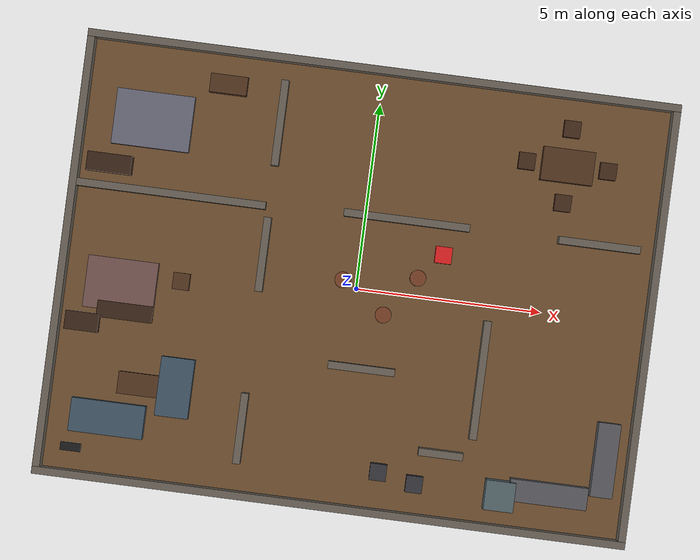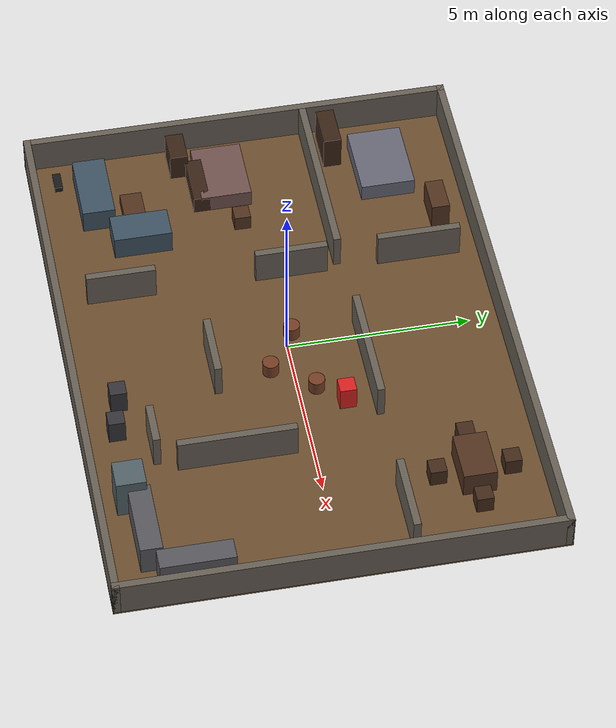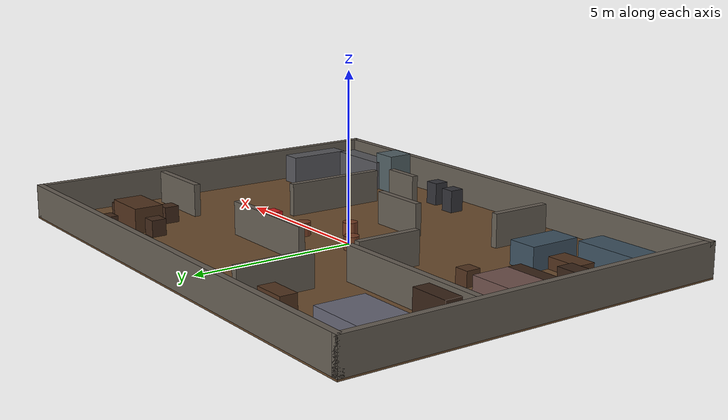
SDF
<?xml version="1.0" ?>
<sdf version="1.6">
  <world name="cleaning_house_v2_dark">

    <gravity>0 0 -9.8</gravity>

    <physics type="ode">
      <max_step_size>0.001</max_step_size>
      <real_time_update_rate>1000</real_time_update_rate>
    </physics>

    <scene>
      <ambient>0.72 0.72 0.72 1</ambient>
      <background>0.28 0.28 0.30 1</background>
      <shadows>false</shadows>
      <grid>true</grid>
    </scene>

    <light name="sun" type="directional">
      <cast_shadows>false</cast_shadows>
      <pose>0 0 10 0 0 0</pose>
      <diffuse>0.75 0.75 0.75 1</diffuse>
      <specular>0.15 0.15 0.15 1</specular>
      <attenuation>
        <range>100</range>
        <constant>0.9</constant>
        <linear>0.01</linear>
        <quadratic>0.001</quadratic>
      </attenuation>
      <direction>-0.3 0.15 -0.9</direction>
    </light>

    <!-- ================= 地面 ================= -->
    <model name="floor">
      <static>true</static>
      <link name="link">
        <collision name="collision">
          <geometry>
            <box>
              <size>16 12 0.05</size>
            </box>
          </geometry>
        </collision>
        <visual name="visual">
          <geometry>
            <box>
              <size>16 12 0.05</size>
            </box>
          </geometry>
          <material>
            <ambient>0.34 0.24 0.14 1</ambient>
            <diffuse>0.42 0.30 0.18 1</diffuse>
          </material>
        </visual>
        <pose>0 0 -0.025 0 0 0</pose>
      </link>
    </model>

    <!-- ================= 外墙 ================= -->
    <model name="wall_north">
      <static>true</static>
      <link name="link">
        <collision name="collision">
          <geometry>
            <box>
              <size>16 0.2 1.0</size>
            </box>
          </geometry>
        </collision>
        <visual name="visual">
          <geometry>
            <box>
              <size>16 0.2 1.0</size>
            </box>
          </geometry>
          <material>
            <ambient>0.30 0.28 0.25 1</ambient>
            <diffuse>0.40 0.37 0.33 1</diffuse>
          </material>
        </visual>
        <pose>0 5.9 0.5 0 0 0</pose>
      </link>
    </model>

    <model name="wall_south">
      <static>true</static>
      <link name="link">
        <collision name="collision">
          <geometry>
            <box>
              <size>16 0.2 1.0</size>
            </box>
          </geometry>
        </collision>
        <visual name="visual">
          <geometry>
            <box>
              <size>16 0.2 1.0</size>
            </box>
          </geometry>
          <material>
            <ambient>0.30 0.28 0.25 1</ambient>
            <diffuse>0.40 0.37 0.33 1</diffuse>
          </material>
        </visual>
        <pose>0 -5.9 0.5 0 0 0</pose>
      </link>
    </model>

    <model name="wall_west">
      <static>true</static>
      <link name="link">
        <collision name="collision">
          <geometry>
            <box>
              <size>0.2 12 1.0</size>
            </box>
          </geometry>
        </collision>
        <visual name="visual">
          <geometry>
            <box>
              <size>0.2 12 1.0</size>
            </box>
          </geometry>
          <material>
            <ambient>0.30 0.28 0.25 1</ambient>
            <diffuse>0.40 0.37 0.33 1</diffuse>
          </material>
        </visual>
        <pose>-7.9 0 0.5 0 0 0</pose>
      </link>
    </model>

    <model name="wall_east">
      <static>true</static>
      <link name="link">
        <collision name="collision">
          <geometry>
            <box>
              <size>0.2 12 1.0</size>
            </box>
          </geometry>
        </collision>
        <visual name="visual">
          <geometry>
            <box>
              <size>0.2 12 1.0</size>
            </box>
          </geometry>
          <material>
            <ambient>0.30 0.28 0.25 1</ambient>
            <diffuse>0.40 0.37 0.33 1</diffuse>
          </material>
        </visual>
        <pose>7.9 0 0.5 0 0 0</pose>
      </link>
    </model>

    <!-- ================= 内墙 ================= -->

    <model name="left_divider_top">
      <static>true</static>
      <link name="link">
        <collision name="collision">
          <geometry>
            <box>
              <size>0.2 2.3 1.0</size>
            </box>
          </geometry>
        </collision>
        <visual name="visual">
          <geometry>
            <box>
              <size>0.2 2.3 1.0</size>
            </box>
          </geometry>
          <material>
            <ambient>0.30 0.28 0.25 1</ambient>
            <diffuse>0.40 0.37 0.33 1</diffuse>
          </material>
        </visual>
        <pose>-2.6 4.15 0.5 0 0 0</pose>
      </link>
    </model>

    <model name="left_divider_mid">
      <static>true</static>
      <link name="link">
        <collision name="collision">
          <geometry>
            <box>
              <size>0.2 2.0 1.0</size>
            </box>
          </geometry>
        </collision>
        <visual name="visual">
          <geometry>
            <box>
              <size>0.2 2.0 1.0</size>
            </box>
          </geometry>
          <material>
            <ambient>0.30 0.28 0.25 1</ambient>
            <diffuse>0.40 0.37 0.33 1</diffuse>
          </material>
        </visual>
        <pose>-2.6 0.6 0.5 0 0 0</pose>
      </link>
    </model>

    <model name="left_divider_bottom">
      <static>true</static>
      <link name="link">
        <collision name="collision">
          <geometry>
            <box>
              <size>0.2 1.9 1.0</size>
            </box>
          </geometry>
        </collision>
        <visual name="visual">
          <geometry>
            <box>
              <size>0.2 1.9 1.0</size>
            </box>
          </geometry>
          <material>
            <ambient>0.30 0.28 0.25 1</ambient>
            <diffuse>0.40 0.37 0.33 1</diffuse>
          </material>
        </visual>
        <pose>-2.6 -4.1 0.5 0 0 0</pose>
      </link>
    </model>

    <model name="bedroom_separator">
      <static>true</static>
      <link name="link">
        <collision name="collision">
          <geometry>
            <box>
              <size>5.1 0.2 1.0</size>
            </box>
          </geometry>
        </collision>
        <visual name="visual">
          <geometry>
            <box>
              <size>5.1 0.2 1.0</size>
            </box>
          </geometry>
          <material>
            <ambient>0.30 0.28 0.25 1</ambient>
            <diffuse>0.40 0.37 0.33 1</diffuse>
          </material>
        </visual>
        <pose>-5.25 1.9 0.5 0 0 0</pose>
      </link>
    </model>

    <model name="right_horizontal_left">
      <static>true</static>
      <link name="link">
        <collision name="collision">
          <geometry>
            <box>
              <size>3.4 0.2 1.0</size>
            </box>
          </geometry>
        </collision>
        <visual name="visual">
          <geometry>
            <box>
              <size>3.4 0.2 1.0</size>
            </box>
          </geometry>
          <material>
            <ambient>0.30 0.28 0.25 1</ambient>
            <diffuse>0.40 0.37 0.33 1</diffuse>
          </material>
        </visual>
        <pose>1.1 2.0 0.5 0 0 0</pose>
      </link>
    </model>

    <model name="right_horizontal_right">
      <static>true</static>
      <link name="link">
        <collision name="collision">
          <geometry>
            <box>
              <size>2.2 0.2 1.0</size>
            </box>
          </geometry>
        </collision>
        <visual name="visual">
          <geometry>
            <box>
              <size>2.2 0.2 1.0</size>
            </box>
          </geometry>
          <material>
            <ambient>0.30 0.28 0.25 1</ambient>
            <diffuse>0.40 0.37 0.33 1</diffuse>
          </material>
        </visual>
        <pose>6.3 2.0 0.5 0 0 0</pose>
      </link>
    </model>

    <model name="kitchen_vertical_wall">
      <static>true</static>
      <link name="link">
        <collision name="collision">
          <geometry>
            <box>
              <size>0.2 3.2 1.0</size>
            </box>
          </geometry>
        </collision>
        <visual name="visual">
          <geometry>
            <box>
              <size>0.2 3.2 1.0</size>
            </box>
          </geometry>
          <material>
            <ambient>0.30 0.28 0.25 1</ambient>
            <diffuse>0.40 0.37 0.33 1</diffuse>
          </material>
        </visual>
        <pose>3.6 -2.0 0.5 0 0 0</pose>
      </link>
    </model>

    <model name="narrow_passage_wall_1">
      <static>true</static>
      <link name="link">
        <collision name="collision">
          <geometry>
            <box>
              <size>1.8 0.2 1.0</size>
            </box>
          </geometry>
        </collision>
        <visual name="visual">
          <geometry>
            <box>
              <size>1.8 0.2 1.0</size>
            </box>
          </geometry>
          <material>
            <ambient>0.30 0.28 0.25 1</ambient>
            <diffuse>0.40 0.37 0.33 1</diffuse>
          </material>
        </visual>
        <pose>0.4 -2.1 0.5 0 0 0</pose>
      </link>
    </model>

    <model name="narrow_passage_wall_2">
      <static>true</static>
      <link name="link">
        <collision name="collision">
          <geometry>
            <box>
              <size>1.2 0.2 1.0</size>
            </box>
          </geometry>
        </collision>
        <visual name="visual">
          <geometry>
            <box>
              <size>1.2 0.2 1.0</size>
            </box>
          </geometry>
          <material>
            <ambient>0.30 0.28 0.25 1</ambient>
            <diffuse>0.40 0.37 0.33 1</diffuse>
          </material>
        </visual>
        <pose>2.8 -4.1 0.5 0 0 0</pose>
      </link>
    </model>

    <!-- ================= 客厅区 ================= -->

    <model name="sofa_main">
      <static>true</static>
      <link name="link">
        <collision name="collision">
          <geometry>
            <box>
              <size>2.0 0.9 0.7</size>
            </box>
          </geometry>
        </collision>
        <visual name="visual">
          <geometry>
            <box>
              <size>2.0 0.9 0.7</size>
            </box>
          </geometry>
          <material>
            <ambient>0.17 0.24 0.28 1</ambient>
            <diffuse>0.24 0.32 0.38 1</diffuse>
          </material>
        </visual>
        <pose>-6.2 -4.3 0.35 0 0 0</pose>
      </link>
    </model>

    <model name="sofa_side">
      <static>true</static>
      <link name="link">
        <collision name="collision">
          <geometry>
            <box>
              <size>0.9 1.6 0.7</size>
            </box>
          </geometry>
        </collision>
        <visual name="visual">
          <geometry>
            <box>
              <size>0.9 1.6 0.7</size>
            </box>
          </geometry>
          <material>
            <ambient>0.17 0.24 0.28 1</ambient>
            <diffuse>0.24 0.32 0.38 1</diffuse>
          </material>
        </visual>
        <pose>-4.5 -3.25 0.35 0 0 0</pose>
      </link>
    </model>

    <model name="coffee_table">
      <static>true</static>
      <link name="link">
        <collision name="collision">
          <geometry>
            <box>
              <size>1.1 0.6 0.35</size>
            </box>
          </geometry>
        </collision>
        <visual name="visual">
          <geometry>
            <box>
              <size>1.1 0.6 0.35</size>
            </box>
          </geometry>
          <material>
            <ambient>0.24 0.14 0.08 1</ambient>
            <diffuse>0.32 0.20 0.12 1</diffuse>
          </material>
        </visual>
        <pose>-5.5 -3.3 0.175 0 0 0</pose>
      </link>
    </model>

    <model name="tv_cabinet">
      <static>true</static>
      <link name="link">
        <collision name="collision">
          <geometry>
            <box>
              <size>1.5 0.45 0.5</size>
            </box>
          </geometry>
        </collision>
        <visual name="visual">
          <geometry>
            <box>
              <size>1.5 0.45 0.5</size>
            </box>
          </geometry>
          <material>
            <ambient>0.16 0.10 0.06 1</ambient>
            <diffuse>0.22 0.14 0.09 1</diffuse>
          </material>
        </visual>
        <pose>-6.1 -1.4 0.25 0 0 0</pose>
      </link>
    </model>

    <!-- ================= 左上卧室 ================= -->

    <model name="bedroom1_bed">
      <static>true</static>
      <link name="link">
        <collision name="collision">
          <geometry>
            <box>
              <size>2.1 1.5 0.5</size>
            </box>
          </geometry>
        </collision>
        <visual name="visual">
          <geometry>
            <box>
              <size>2.1 1.5 0.5</size>
            </box>
          </geometry>
          <material>
            <ambient>0.30 0.30 0.34 1</ambient>
            <diffuse>0.40 0.40 0.46 1</diffuse>
          </material>
        </visual>
        <pose>-6.0 3.8 0.25 0 0 0</pose>
      </link>
    </model>

    <model name="bedroom1_wardrobe">
      <static>true</static>
      <link name="link">
        <collision name="collision">
          <geometry>
            <box>
              <size>1.2 0.5 1.0</size>
            </box>
          </geometry>
        </collision>
        <visual name="visual">
          <geometry>
            <box>
              <size>1.2 0.5 1.0</size>
            </box>
          </geometry>
          <material>
            <ambient>0.16 0.10 0.06 1</ambient>
            <diffuse>0.22 0.14 0.09 1</diffuse>
          </material>
        </visual>
        <pose>-7.0 2.5 0.5 0 0 0</pose>
      </link>
    </model>

    <model name="bedroom1_desk">
      <static>true</static>
      <link name="link">
        <collision name="collision">
          <geometry>
            <box>
              <size>1.0 0.5 0.75</size>
            </box>
          </geometry>
        </collision>
        <visual name="visual">
          <geometry>
            <box>
              <size>1.0 0.5 0.75</size>
            </box>
          </geometry>
          <material>
            <ambient>0.24 0.14 0.08 1</ambient>
            <diffuse>0.32 0.20 0.12 1</diffuse>
          </material>
        </visual>
        <pose>-4.1 5.0 0.375 0 0 0</pose>
      </link>
    </model>

    <!-- ================= 左下卧室 ================= -->

    <model name="bedroom2_bed">
      <static>true</static>
      <link name="link">
        <collision name="collision">
          <geometry>
            <box>
              <size>1.9 1.4 0.5</size>
            </box>
          </geometry>
        </collision>
        <visual name="visual">
          <geometry>
            <box>
              <size>1.9 1.4 0.5</size>
            </box>
          </geometry>
          <material>
            <ambient>0.34 0.25 0.23 1</ambient>
            <diffuse>0.44 0.32 0.30 1</diffuse>
          </material>
        </visual>
        <pose>-6.3 -0.7 0.25 0 0 0</pose>
      </link>
    </model>

    <model name="bedroom2_nightstand">
      <static>true</static>
      <link name="link">
        <collision name="collision">
          <geometry>
            <box>
              <size>0.45 0.45 0.45</size>
            </box>
          </geometry>
        </collision>
        <visual name="visual">
          <geometry>
            <box>
              <size>0.45 0.45 0.45</size>
            </box>
          </geometry>
          <material>
            <ambient>0.24 0.14 0.08 1</ambient>
            <diffuse>0.32 0.20 0.12 1</diffuse>
          </material>
        </visual>
        <pose>-4.7 -0.4 0.225 0 0 0</pose>
      </link>
    </model>

    <model name="bedroom2_drawer">
      <static>true</static>
      <link name="link">
        <collision name="collision">
          <geometry>
            <box>
              <size>0.9 0.5 0.8</size>
            </box>
          </geometry>
        </collision>
        <visual name="visual">
          <geometry>
            <box>
              <size>0.9 0.5 0.8</size>
            </box>
          </geometry>
          <material>
            <ambient>0.16 0.10 0.06 1</ambient>
            <diffuse>0.22 0.14 0.09 1</diffuse>
          </material>
        </visual>
        <pose>-7.2 -1.8 0.4 0 0 0</pose>
      </link>
    </model>

    <!-- ================= 餐厅/厨房区 ================= -->

    <model name="dining_table">
      <static>true</static>
      <link name="link">
        <collision name="collision">
          <geometry>
            <box>
              <size>1.4 0.9 0.75</size>
            </box>
          </geometry>
        </collision>
        <visual name="visual">
          <geometry>
            <box>
              <size>1.4 0.9 0.75</size>
            </box>
          </geometry>
          <material>
            <ambient>0.24 0.14 0.08 1</ambient>
            <diffuse>0.32 0.20 0.12 1</diffuse>
          </material>
        </visual>
        <pose>5.2 4.0 0.375 0 0 0</pose>
      </link>
    </model>

    <model name="dining_chair_1">
      <static>true</static>
      <link name="link">
        <collision name="collision">
          <geometry>
            <box>
              <size>0.45 0.45 0.5</size>
            </box>
          </geometry>
        </collision>
        <visual name="visual">
          <geometry>
            <box>
              <size>0.45 0.45 0.5</size>
            </box>
          </geometry>
          <material>
            <ambient>0.18 0.10 0.06 1</ambient>
            <diffuse>0.26 0.16 0.10 1</diffuse>
          </material>
        </visual>
        <pose>4.1 4.0 0.25 0 0 0</pose>
      </link>
    </model>

    <model name="dining_chair_2">
      <static>true</static>
      <link name="link">
        <collision name="collision">
          <geometry>
            <box>
              <size>0.45 0.45 0.5</size>
            </box>
          </geometry>
        </collision>
        <visual name="visual">
          <geometry>
            <box>
              <size>0.45 0.45 0.5</size>
            </box>
          </geometry>
          <material>
            <ambient>0.18 0.10 0.06 1</ambient>
            <diffuse>0.26 0.16 0.10 1</diffuse>
          </material>
        </visual>
        <pose>6.3 4.0 0.25 0 0 0</pose>
      </link>
    </model>

    <model name="dining_chair_3">
      <static>true</static>
      <link name="link">
        <collision name="collision">
          <geometry>
            <box>
              <size>0.45 0.45 0.5</size>
            </box>
          </geometry>
        </collision>
        <visual name="visual">
          <geometry>
            <box>
              <size>0.45 0.45 0.5</size>
            </box>
          </geometry>
          <material>
            <ambient>0.18 0.10 0.06 1</ambient>
            <diffuse>0.26 0.16 0.10 1</diffuse>
          </material>
        </visual>
        <pose>5.2 3.0 0.25 0 0 0</pose>
      </link>
    </model>

    <model name="dining_chair_4">
      <static>true</static>
      <link name="link">
        <collision name="collision">
          <geometry>
            <box>
              <size>0.45 0.45 0.5</size>
            </box>
          </geometry>
        </collision>
        <visual name="visual">
          <geometry>
            <box>
              <size>0.45 0.45 0.5</size>
            </box>
          </geometry>
          <material>
            <ambient>0.18 0.10 0.06 1</ambient>
            <diffuse>0.26 0.16 0.10 1</diffuse>
          </material>
        </visual>
        <pose>5.2 5.0 0.25 0 0 0</pose>
      </link>
    </model>

    <model name="kitchen_counter_1">
      <static>true</static>
      <link name="link">
        <collision name="collision">
          <geometry>
            <box>
              <size>2.1 0.6 0.9</size>
            </box>
          </geometry>
        </collision>
        <visual name="visual">
          <geometry>
            <box>
              <size>2.1 0.6 0.9</size>
            </box>
          </geometry>
          <material>
            <ambient>0.26 0.26 0.27 1</ambient>
            <diffuse>0.34 0.34 0.36 1</diffuse>
          </material>
        </visual>
        <pose>5.8 -4.8 0.45 0 0 0</pose>
      </link>
    </model>

    <model name="kitchen_counter_2">
      <static>true</static>
      <link name="link">
        <collision name="collision">
          <geometry>
            <box>
              <size>0.6 2.0 0.9</size>
            </box>
          </geometry>
        </collision>
        <visual name="visual">
          <geometry>
            <box>
              <size>0.6 2.0 0.9</size>
            </box>
          </geometry>
          <material>
            <ambient>0.26 0.26 0.27 1</ambient>
            <diffuse>0.34 0.34 0.36 1</diffuse>
          </material>
        </visual>
        <pose>7.2 -3.7 0.45 0 0 0</pose>
      </link>
    </model>

    <model name="fridge">
      <static>true</static>
      <link name="link">
        <collision name="collision">
          <geometry>
            <box>
              <size>0.8 0.8 1.2</size>
            </box>
          </geometry>
        </collision>
        <visual name="visual">
          <geometry>
            <box>
              <size>0.8 0.8 1.2</size>
            </box>
          </geometry>
          <material>
            <ambient>0.24 0.28 0.30 1</ambient>
            <diffuse>0.32 0.38 0.40 1</diffuse>
          </material>
        </visual>
        <pose>4.5 -5.0 0.6 0 0 0</pose>
      </link>
    </model>

    <!-- ================= 走廊/测试障碍 ================= -->

    <model name="stool_1">
      <static>true</static>
      <link name="link">
        <collision name="collision">
          <geometry>
            <cylinder>
              <radius>0.22</radius>
              <length>0.4</length>
            </cylinder>
          </geometry>
        </collision>
        <visual name="visual">
          <geometry>
            <cylinder>
              <radius>0.22</radius>
              <length>0.4</length>
            </cylinder>
          </geometry>
          <material>
            <ambient>0.34 0.18 0.10 1</ambient>
            <diffuse>0.46 0.24 0.14 1</diffuse>
          </material>
        </visual>
        <pose>-0.4 0.2 0.2 0 0 0</pose>
      </link>
    </model>

    <model name="stool_2">
      <static>true</static>
      <link name="link">
        <collision name="collision">
          <geometry>
            <cylinder>
              <radius>0.22</radius>
              <length>0.4</length>
            </cylinder>
          </geometry>
        </collision>
        <visual name="visual">
          <geometry>
            <cylinder>
              <radius>0.22</radius>
              <length>0.4</length>
            </cylinder>
          </geometry>
          <material>
            <ambient>0.34 0.18 0.10 1</ambient>
            <diffuse>0.46 0.24 0.14 1</diffuse>
          </material>
        </visual>
        <pose>0.8 -0.6 0.2 0 0 0</pose>
      </link>
    </model>

    <model name="stool_3">
      <static>true</static>
      <link name="link">
        <collision name="collision">
          <geometry>
            <cylinder>
              <radius>0.22</radius>
              <length>0.4</length>
            </cylinder>
          </geometry>
        </collision>
        <visual name="visual">
          <geometry>
            <cylinder>
              <radius>0.22</radius>
              <length>0.4</length>
            </cylinder>
          </geometry>
          <material>
            <ambient>0.34 0.18 0.10 1</ambient>
            <diffuse>0.46 0.24 0.14 1</diffuse>
          </material>
        </visual>
        <pose>1.6 0.5 0.2 0 0 0</pose>
      </link>
    </model>

    <model name="bin_1">
      <static>true</static>
      <link name="link">
        <collision name="collision">
          <geometry>
            <box>
              <size>0.45 0.45 0.7</size>
            </box>
          </geometry>
        </collision>
        <visual name="visual">
          <geometry>
            <box>
              <size>0.45 0.45 0.7</size>
            </box>
          </geometry>
          <material>
            <ambient>0.12 0.12 0.13 1</ambient>
            <diffuse>0.20 0.20 0.22 1</diffuse>
          </material>
        </visual>
        <pose>1.2 -4.8 0.35 0 0 0</pose>
      </link>
    </model>

    <model name="bin_2">
      <static>true</static>
      <link name="link">
        <collision name="collision">
          <geometry>
            <box>
              <size>0.45 0.45 0.7</size>
            </box>
          </geometry>
        </collision>
        <visual name="visual">
          <geometry>
            <box>
              <size>0.45 0.45 0.7</size>
            </box>
          </geometry>
          <material>
            <ambient>0.12 0.12 0.13 1</ambient>
            <diffuse>0.20 0.20 0.22 1</diffuse>
          </material>
        </visual>
        <pose>2.2 -5.0 0.35 0 0 0</pose>
      </link>
    </model>

    <model name="charging_dock">
      <static>true</static>
      <link name="link">
        <collision name="collision">
          <geometry>
            <box>
              <size>0.55 0.22 0.15</size>
            </box>
          </geometry>
        </collision>
        <visual name="visual">
          <geometry>
            <box>
              <size>0.55 0.22 0.15</size>
            </box>
          </geometry>
          <material>
            <ambient>0.05 0.05 0.05 1</ambient>
            <diffuse>0.10 0.10 0.10 1</diffuse>
          </material>
        </visual>
        <pose>-7.1 -5.2 0.075 0 0 0</pose>
      </link>
    </model>

    <!-- ================= 动态障碍物：右侧中部主通道 ================= -->
    <model name="dynamic_box_main_corridor">
      <static>false</static>
      <pose>2.2 1.2 0.35 0 0 0</pose>

      <link name="link">
        <collision name="collision">
          <geometry>
            <box>
              <size>0.45 0.45 0.7</size>
            </box>
          </geometry>
        </collision>

        <visual name="visual">
          <geometry>
            <box>
              <size>0.45 0.45 0.7</size>
            </box>
          </geometry>
          <material>
            <ambient>0.75 0.10 0.10 1</ambient>
            <diffuse>0.85 0.12 0.12 1</diffuse>
          </material>
        </visual>

        <inertial>
          <mass>5.0</mass>
          <inertia>
            <ixx>0.2</ixx>
            <iyy>0.2</iyy>
            <izz>0.2</izz>
            <ixy>0.0</ixy>
            <ixz>0.0</ixz>
            <iyz>0.0</iyz>
          </inertia>
        </inertial>
      </link>

      <plugin name="moving_obstacle_plugin" filename="libmoving_obstacle_plugin.so">
        <motion_axis>y</motion_axis>
        <x>2.2</x>
        <start_y>-1.0</start_y>
        <end_y>1.2</end_y>
        <z>0.35</z>
        <yaw>0.0</yaw>
        <speed>0.08</speed>
      </plugin>
    </model>

  </world>
</sdf>
